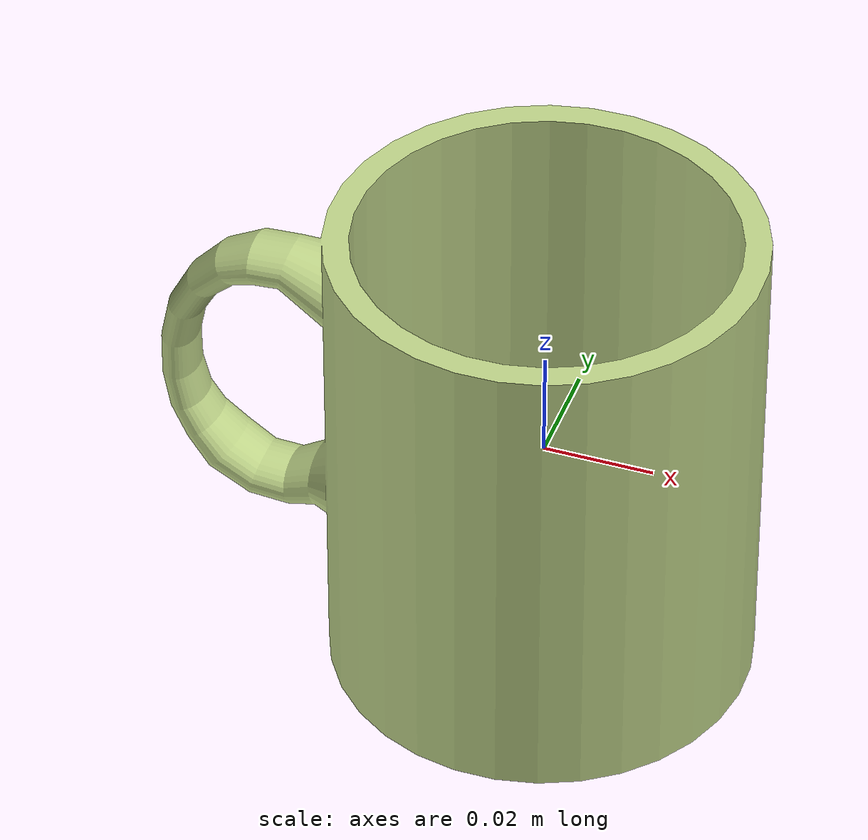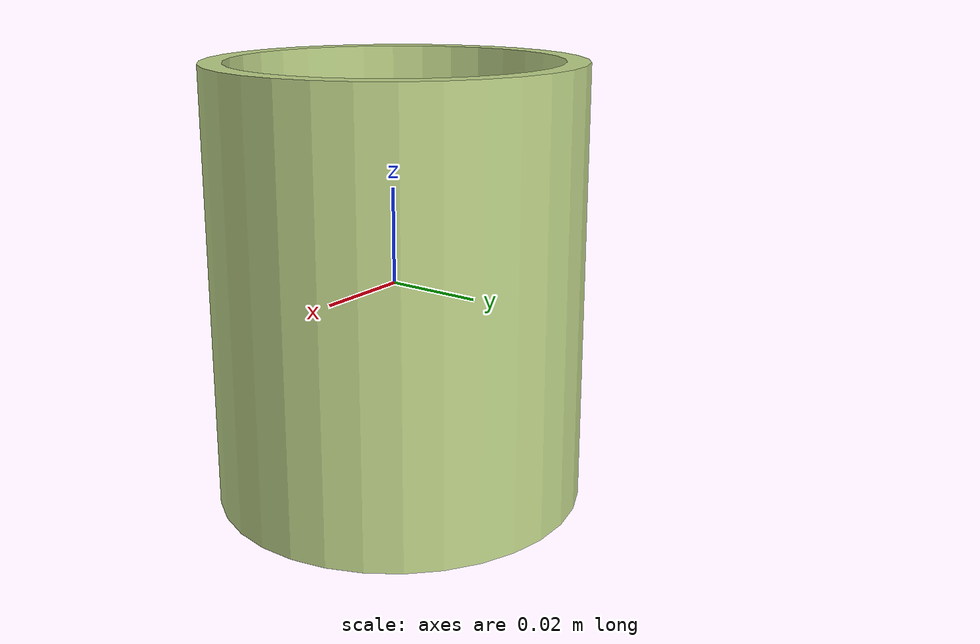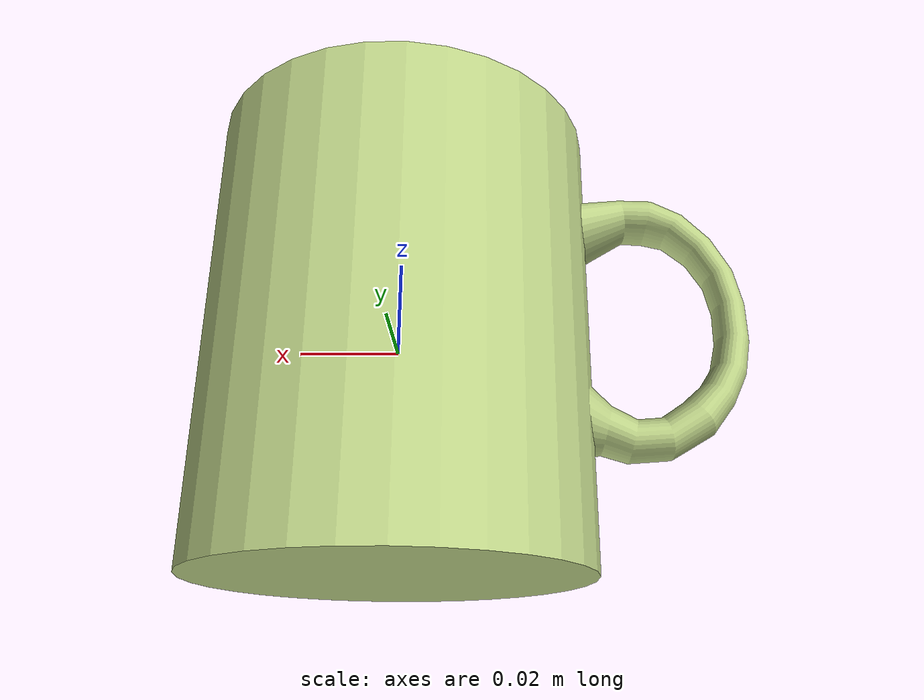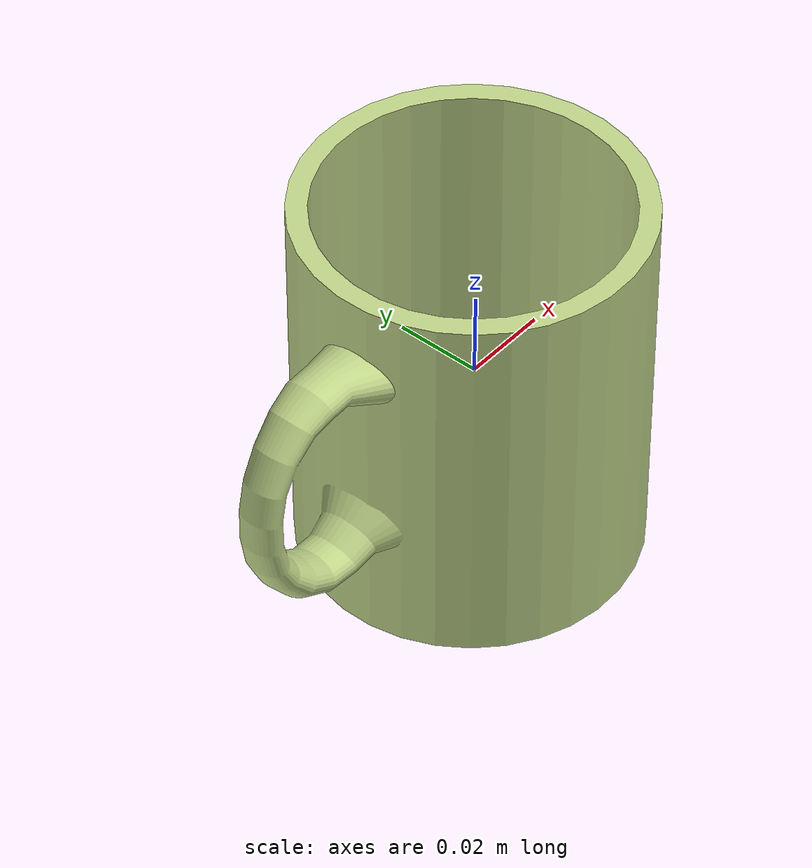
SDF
<?xml version="1.0" ?>
<sdf version="1.4">
  <model name="mug">
    <pose>0 0 0.0 0 0 0</pose>
    <link name="body">
      <inertial>
        <pose>0.000001 -0.008431 -0.003743 -0.2 0 0</pose>
        <mass>0.2</mass>
        <inertia>
          <ixx>0.38900e-3</ixx>
          <ixy>-0.00001e-3</ixy>
          <ixz>-0.00002e-3</ixz>
          <iyy>0.32198e-3</iyy>
          <iyz>-0.01703e-3</iyz>
          <izz>0.40459e-3</izz>
        </inertia>
      </inertial>
      <visual name="visual">
        <cast_shadows>true</cast_shadows>
        <geometry>
         <mesh>
           <uri>model://mug/meshes/mug.dae</uri>
           <scale>1.05 1.05 1.05</scale>
         </mesh>
        </geometry>
      </visual>
      <collision name="collision">
        <surface>
          <friction>
            <ode>
              <mu>0.5</mu>
              <mu2>0.5</mu2>
            </ode>
          </friction>
        </surface>
        <geometry>
         <mesh>
           <uri>model://mug/meshes/mug.stl</uri>
           <scale>1.05 1.05 1.05</scale>
         </mesh>
        </geometry>
      </collision>
      <surface>
        <friction>
          <ode>
            <mu>1.0</mu> <!-- Static friction coefficient -->
            <mu2>1.0</mu2> <!-- Dynamic friction coefficient -->
            <slip1>0.0</slip1> <!-- Slip compliance, set to 0 for no slip -->
            <slip2>0.0</slip2> <!-- Slip compliance, set to 0 for no slip -->
          </ode>
        </friction>
      </surface>
    </link>
  </model>
</sdf>
